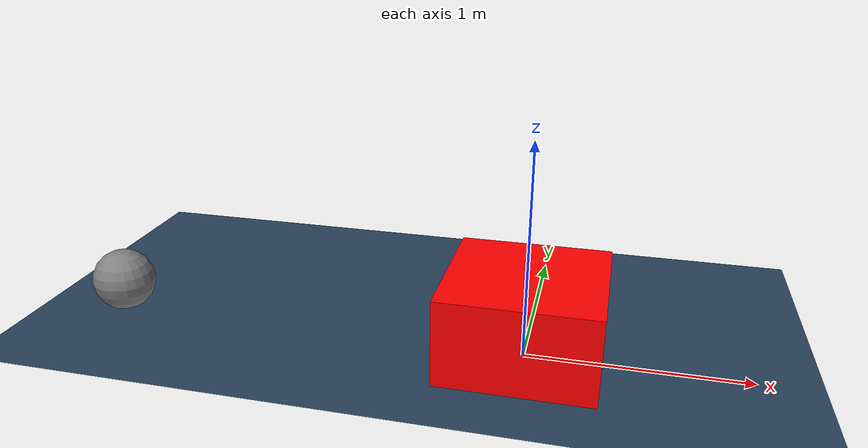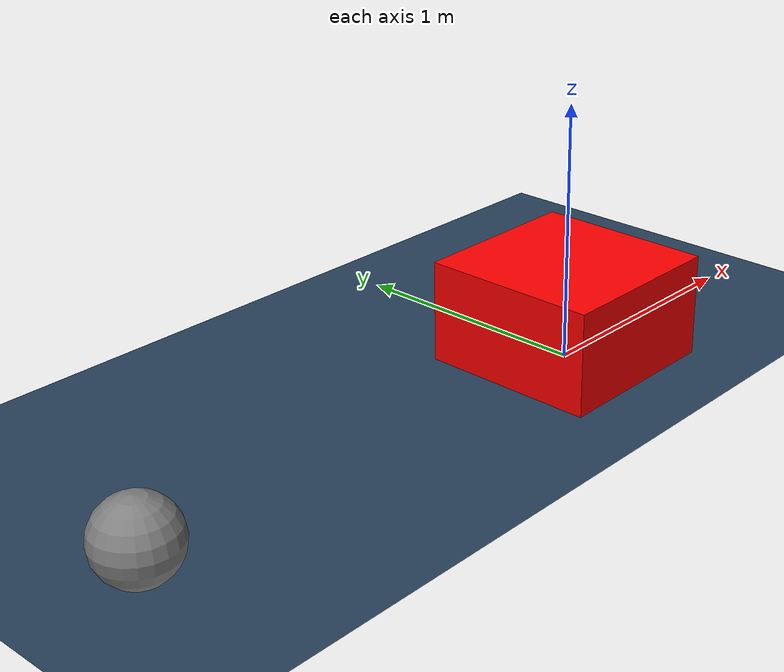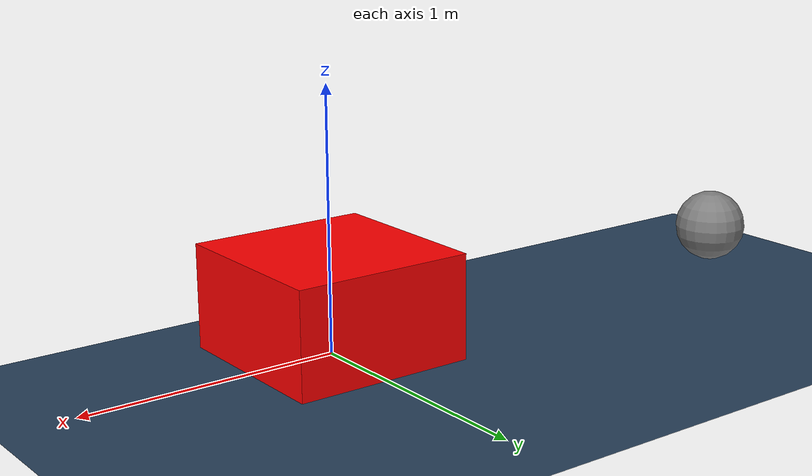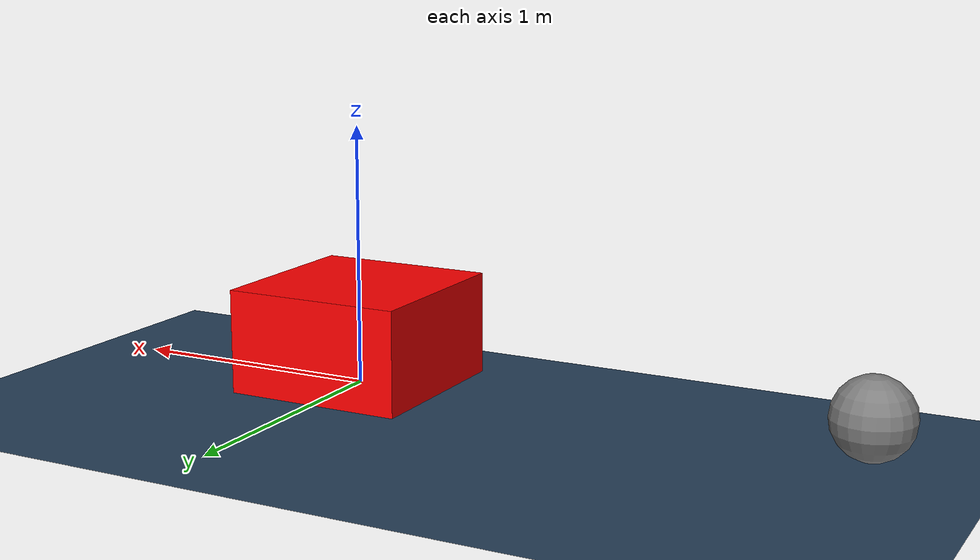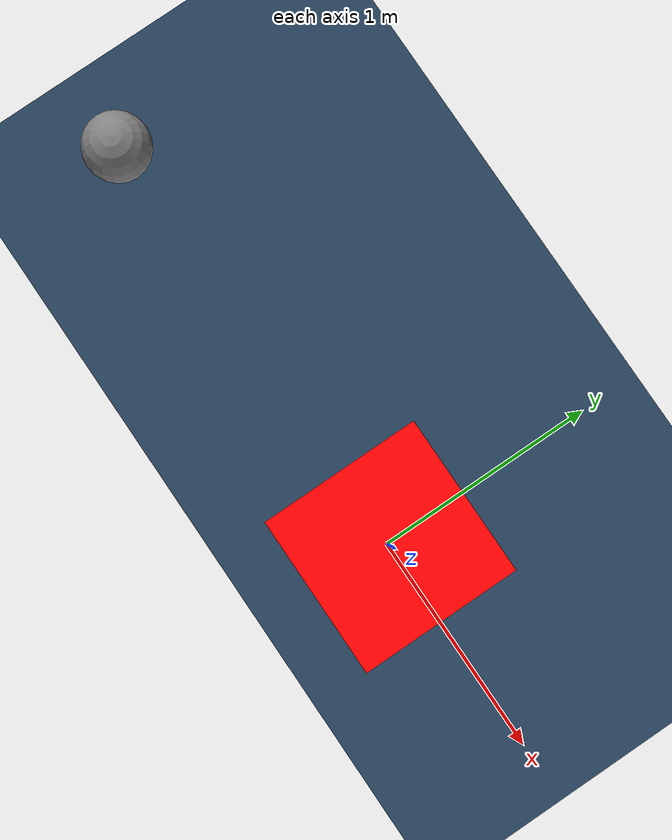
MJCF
<?xml version="1.0" ?>
<mujoco model="nominal_primitive_generation">
  <option cone="elliptic" integrator="RK4" timestep="0.01"/>
  <default>
    <geom density="1"/>
  </default>
  <asset>
    <texture builtin="gradient" height="3072" rgb1="0.3 0.5 0.7" rgb2="0 0 0" type="skybox" width="512"/>
    <texture builtin="checker" height="300" mark="edge" markrgb="0.8 0.8 0.8" name="groundplane" rgb1="0.2 0.3 0.4" rgb2="0.1 0.2 0.3" type="2d" width="300"/>
    <material name="groundplane" reflectance="0.2" texrepeat="5 5" texture="groundplane" texuniform="true"/>
    <material name="robot" rgba="1.0 1.0 0.0 1.0"/>
  </asset>
  <worldbody>
    <light dir="0 0 -1" directional="true" pos="0 0 1.5"/>
    <geom condim="4" friction="0.5 0.005 0.001" material="groundplane" name="floor" size="0 0 0.05" type="plane"/>

    <!-- Robot positioned away from origin for primitive generation -->
    <body name="robot">
      <joint axis="1 0 0" name="joint_x" pos="0 0 0" type="slide"/>
      <joint axis="0 1 0" name="joint_y" pos="0 0 0" type="slide"/>
      <geom condim="4" friction="1.0 0.005 0.0001" mass="5.0" name="robot" pos="-2.0 0.0 0.15" size="0.15 0.15 0.15" type="sphere"/>
    </body>

    <!-- Nominal object: 0.35x0.35m square at origin with 0 rotation -->
    <body name="obstacle_1_movable">
      <geom condim="4" euler="0 0 0" friction="0.0 0.005 0.001" mass="0.1" name="obstacle_1_movable" pos="0.0 0.0 0.2" rgba="1 0 0 1" size="0.35 0.35 0.2" type="box"/>
      <joint type="free"/>
    </body>
  </worldbody>

  <actuator>
    <velocity kv="50" ctrlrange="-0.5 0.5" forcerange="-20 20" joint="joint_x" name="actuator_x"/>
    <velocity kv="50" ctrlrange="-0.5 0.5" forcerange="-20 20" joint="joint_y" name="actuator_y"/>
  </actuator>
</mujoco>
